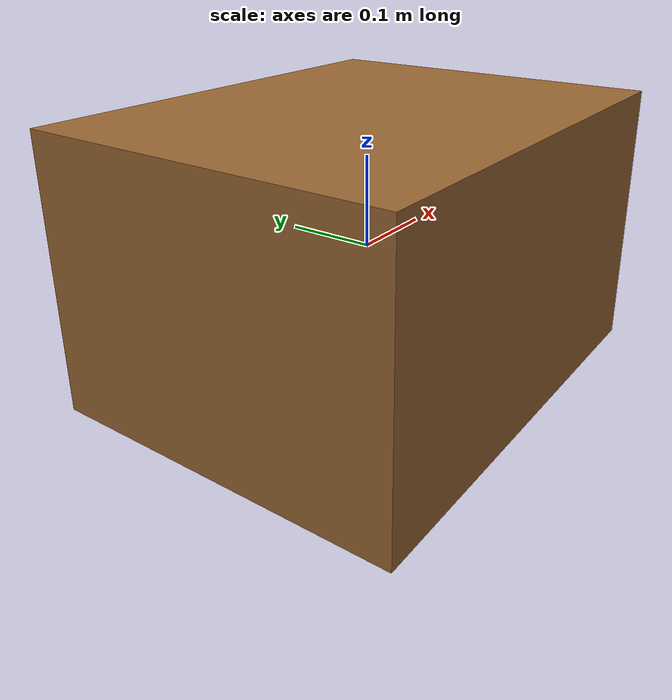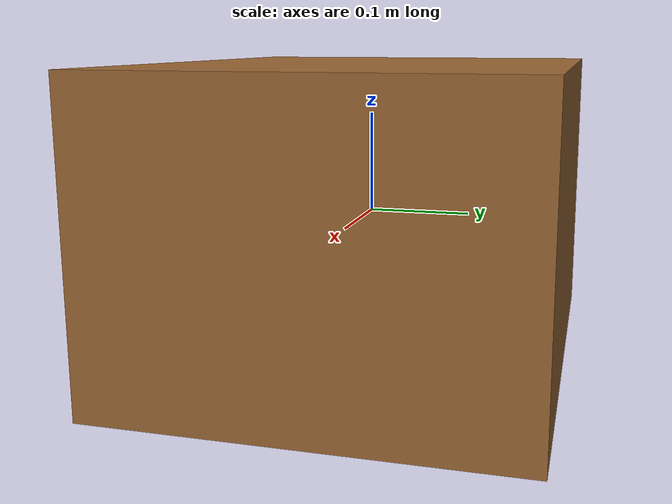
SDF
<?xml version="1.0"?>
<sdf version="1.6">
  <model name="crate">
    <static>true</static>
    <link name="crate_link">
      <collision name="crate_collision">
        <geometry>
          <box>
            <size>0.5 0.4 0.3</size>
          </box>
        </geometry>
      </collision>
      <visual name="crate_visual">
        <geometry>
          <box>
            <size>0.5 0.4 0.3</size>
          </box>
        </geometry>
        <material>
          <ambient>0.5 0.35 0.15 1</ambient>
          <diffuse>0.6 0.4 0.2 1</diffuse>
          <specular>0.1 0.08 0.04 1</specular>
        </material>
      </visual>
    </link>
  </model>
</sdf>
